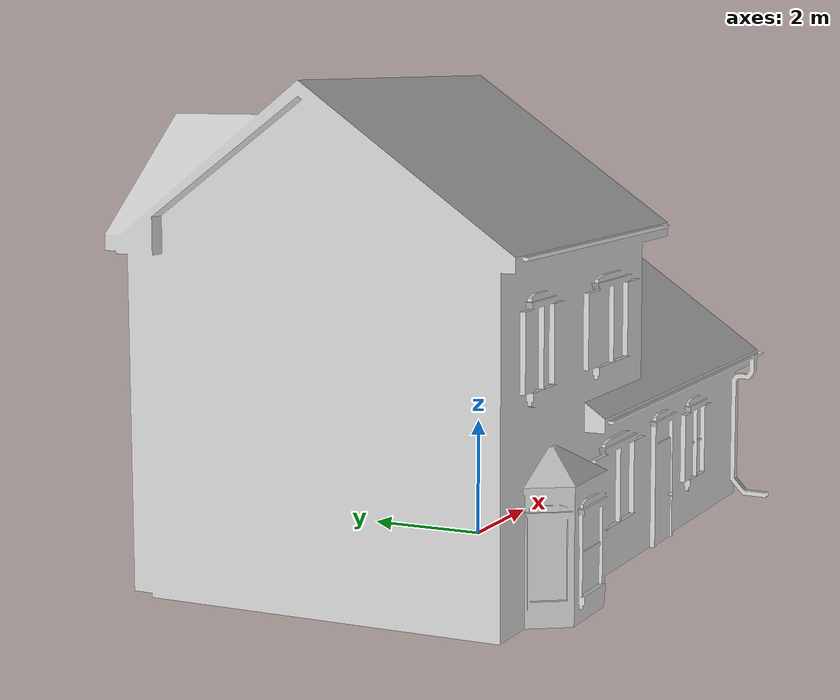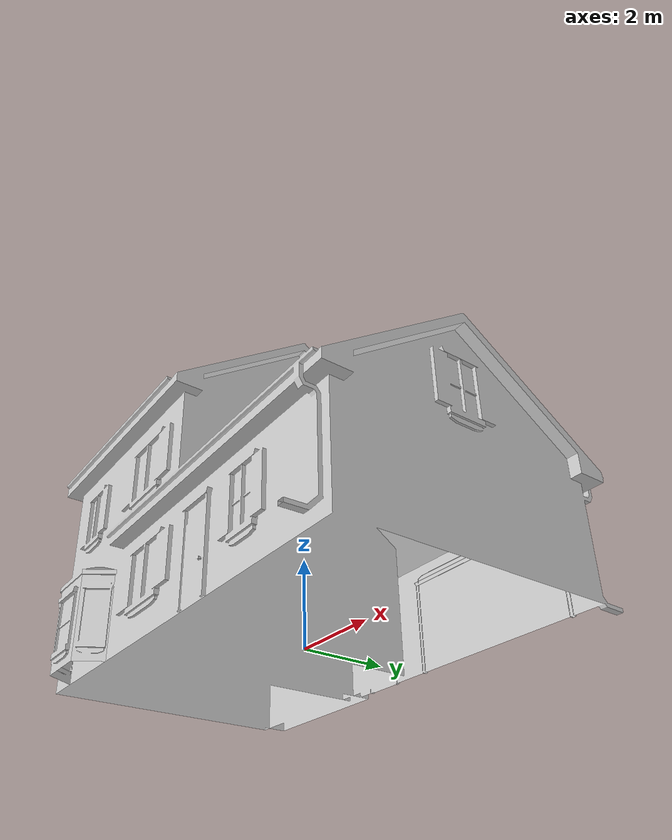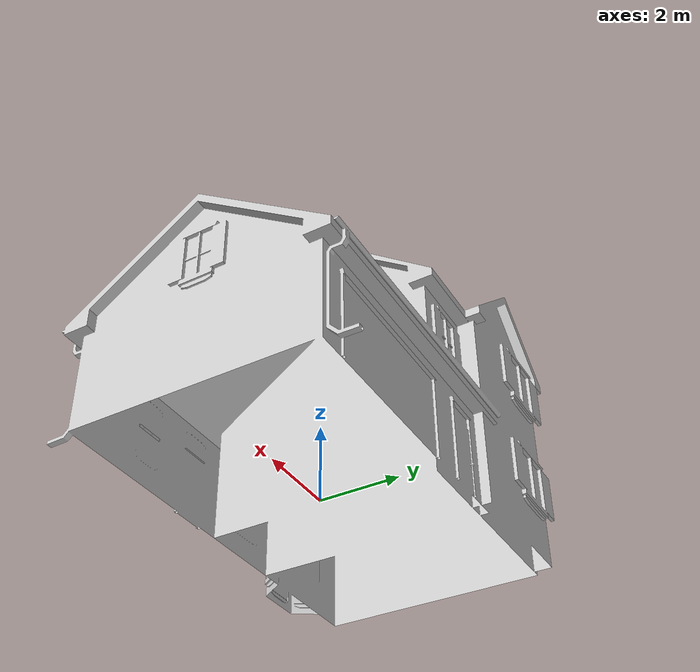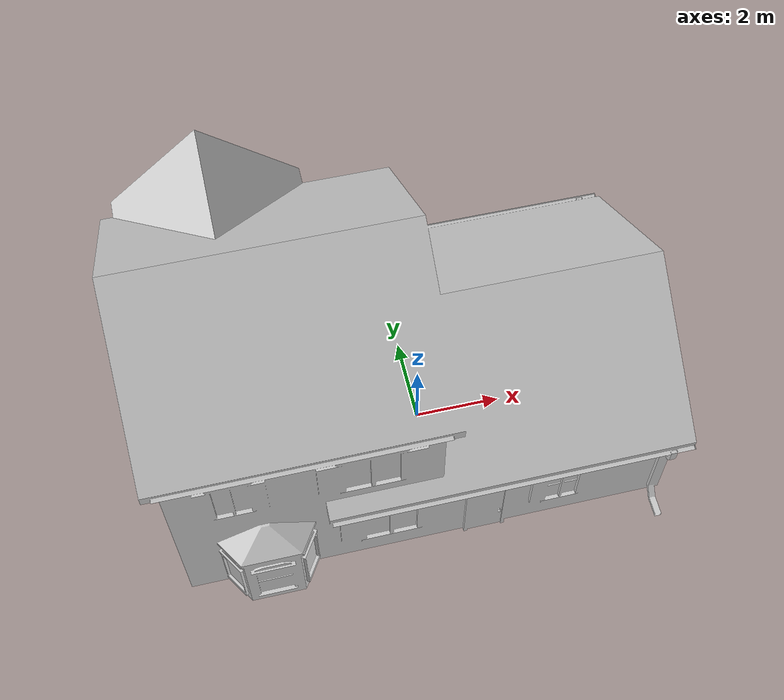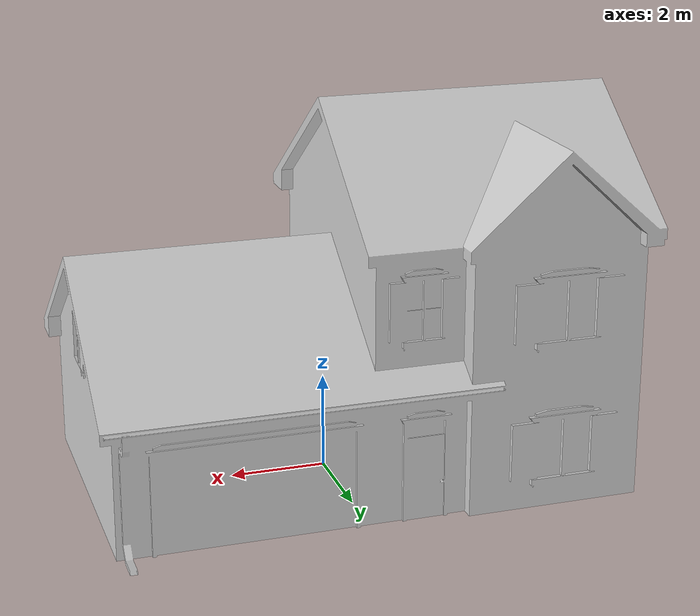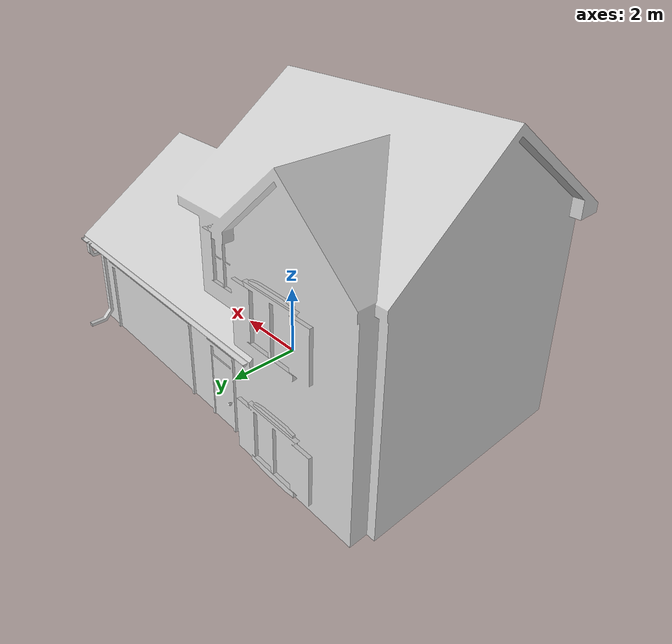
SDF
<?xml version="1.0" ?>
<sdf version="1.5">
  <model name="House 3">
    <static>true</static>
    <link name="link">
      <collision name="collision">
        <geometry>
          <mesh>
            <uri>model://house_3/meshes/house_3.dae</uri>
            <scale>1.3 1.3 1.3</scale>
          </mesh>
        </geometry>
      </collision>
      <visual name="visual">
        <geometry>
          <mesh>
            <uri>model://house_3/meshes/house_3.dae</uri>
            <scale>1.3 1.3 1.3</scale>
          </mesh>
        </geometry>
        <material>
          <script>
            <uri>model://house_3/materials/scripts</uri>
            <uri>model://house_3/materials/textures</uri>
            <uri>model://house_1/materials/textures</uri>
            <name>House_3/Diffuse</name>
          </script>
          <shader type="normal_map_tangent_space">
            <normal_map>model://house_1/materials/textures/House_1_Normal.png</normal_map>
          </shader>
        </material>
      </visual>
    </link>
  </model>
</sdf>
